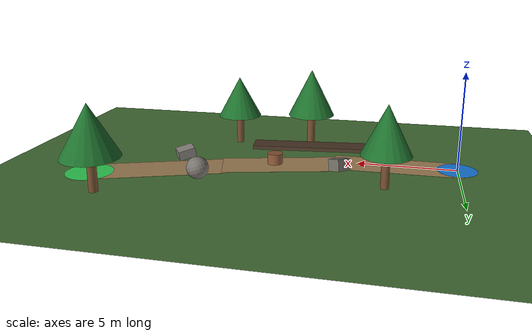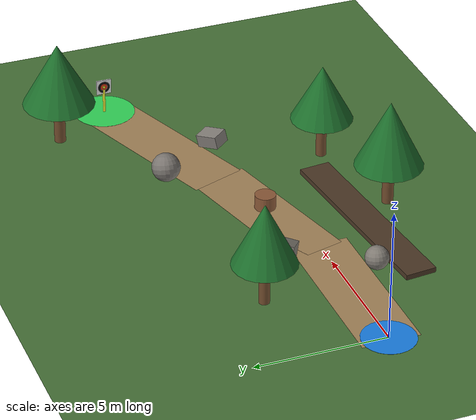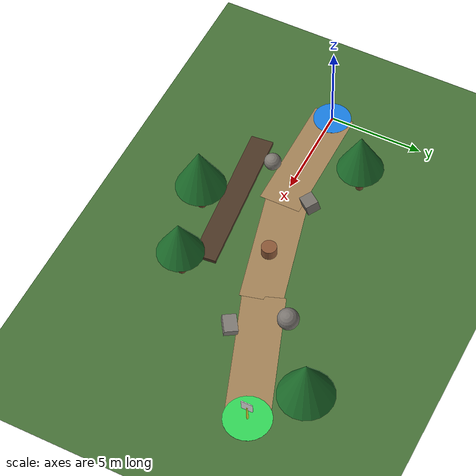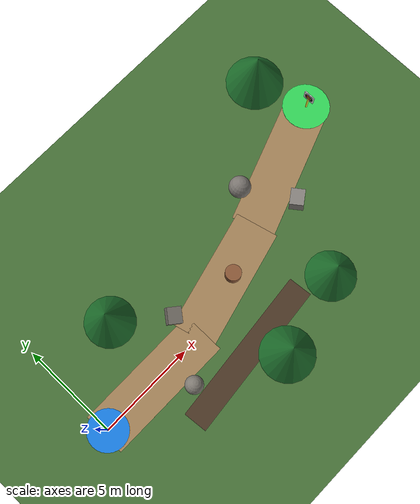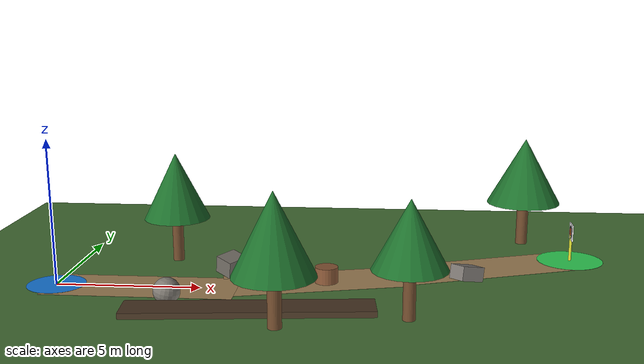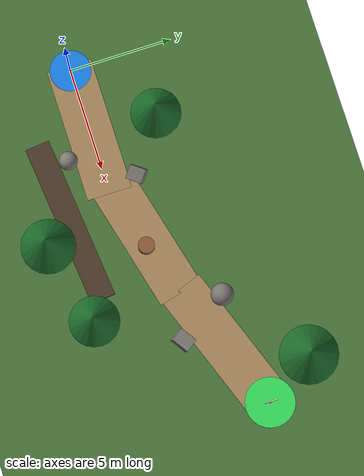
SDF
<?xml version="1.0" ?>
<sdf version="1.8">
  <world name="outdoor_terrain_world">
    <!-- Physics -->
    <physics name="1ms" type="ignored">
      <max_step_size>0.004</max_step_size>
      <real_time_factor>1.0</real_time_factor>
    </physics>

    <!-- Plugins -->
    <plugin filename="gz-sim-physics-system" name="gz::sim::systems::Physics" />
    <plugin filename="gz-sim-user-commands-system" name="gz::sim::systems::UserCommands" />
    <plugin filename="gz-sim-scene-broadcaster-system" name="gz::sim::systems::SceneBroadcaster" />
    <plugin filename="gz-sim-sensors-system" name="gz::sim::systems::Sensors" />
    <plugin filename="gz-sim-imu-system" name="gz::sim::systems::Imu" />

    <!-- Lighting -->
    <light type="directional" name="sun">
      <cast_shadows>true</cast_shadows>
      <pose>0 0 30 0.6 0.4 0.2</pose>
      <diffuse>0.9 0.88 0.82 1</diffuse>
      <specular>0.4 0.4 0.4 1</specular>
      <attenuation>
        <range>1000</range>
        <constant>0.9</constant>
        <linear>0.01</linear>
        <quadratic>0.001</quadratic>
      </attenuation>
      <direction>-0.4 0.2 -1.0</direction>
    </light>

    <scene>
      <ambient>0.6 0.65 0.7 1.0</ambient>
      <background>0.5 0.7 0.9 1.0</background>
      <shadows>true</shadows>
      <grid>false</grid>
    </scene>

    <!-- Base Outdoor Terrain (Grass / Off-road ground) -->
    <model name="outdoor_ground">
      <static>true</static>
      <link name="ground_link">
        <collision name="ground_col">
          <geometry>
            <plane>
              <normal>0 0 1</normal>
              <size>60 60</size>
            </plane>
          </geometry>
          <surface>
            <friction>
              <ode>
                <mu>1.1</mu>
                <mu2>1.1</mu2>
              </ode>
            </friction>
          </surface>
        </collision>
        <visual name="ground_vis">
          <geometry>
            <plane>
              <normal>0 0 1</normal>
              <size>60 60</size>
            </plane>
          </geometry>
          <material>
            <ambient>0.22 0.38 0.18 1.0</ambient>
            <diffuse>0.28 0.45 0.22 1.0</diffuse>
            <specular>0.05 0.05 0.05 1.0</specular>
          </material>
        </visual>
      </link>
    </model>

    <!-- Traversable Dirt Path Segments (Connecting Point A to Point B) -->
    <!-- Segment 1: Start section (0 to 6m) -->
    <model name="path_segment_1">
      <static>true</static>
      <pose>3.0 0.0 0.002 0 0 0</pose>
      <link name="link">
        <visual name="vis">
          <geometry>
            <box>
              <size>6.5 2.2 0.004</size>
            </box>
          </geometry>
          <material>
            <ambient>0.55 0.42 0.28 1.0</ambient>
            <diffuse>0.65 0.52 0.35 1.0</diffuse>
          </material>
        </visual>
      </link>
    </model>

    <!-- Segment 2: Curved transition section (6 to 12m, angled toward y=2) -->
    <model name="path_segment_2">
      <static>true</static>
      <pose>8.8 1.0 0.002 0 0 0.25</pose>
      <link name="link">
        <visual name="vis">
          <geometry>
            <box>
              <size>6.2 2.2 0.004</size>
            </box>
          </geometry>
          <material>
            <ambient>0.55 0.42 0.28 1.0</ambient>
            <diffuse>0.65 0.52 0.35 1.0</diffuse>
          </material>
        </visual>
      </link>
    </model>

    <!-- Segment 3: Goal approach section (12 to 18m, ending at Point B) -->
    <model name="path_segment_3">
      <static>true</static>
      <pose>14.8 3.0 0.002 0 0 0.35</pose>
      <link name="link">
        <visual name="vis">
          <geometry>
            <box>
              <size>6.8 2.2 0.004</size>
            </box>
          </geometry>
          <material>
            <ambient>0.55 0.42 0.28 1.0</ambient>
            <diffuse>0.65 0.52 0.35 1.0</diffuse>
          </material>
        </visual>
      </link>
    </model>

    <!-- Start Pad (Point A at x=0, y=0) -->
    <model name="start_pad_point_a">
      <static>true</static>
      <pose>0.0 0.0 0.005 0 0 0</pose>
      <link name="link">
        <visual name="vis">
          <geometry>
            <cylinder>
              <radius>1.0</radius>
              <length>0.008</length>
            </cylinder>
          </geometry>
          <material>
            <ambient>0.1 0.4 0.8 1.0</ambient>
            <diffuse>0.1 0.5 0.9 1.0</diffuse>
          </material>
        </visual>
      </link>
    </model>

    <!-- Target Beacon & Goal Pad (Point B at x=18.0, y=4.2) -->
    <model name="goal_pad_point_b">
      <static>true</static>
      <pose>18.0 4.2 0.005 0 0 0</pose>
      <link name="link">
        <visual name="vis">
          <geometry>
            <cylinder>
              <radius>1.2</radius>
              <length>0.008</length>
            </cylinder>
          </geometry>
          <material>
            <ambient>0.1 0.7 0.3 1.0</ambient>
            <diffuse>0.2 0.85 0.35 1.0</diffuse>
          </material>
        </visual>
      </link>
    </model>

    <!-- Visual Target Beacon Stand with AprilTag / Fiducial Marker -->
    <model name="visual_beacon_target">
      <static>true</static>
      <pose>18.0 4.2 0.75 0 0 3.14159</pose> <!-- facing toward the oncoming robot -->
      <link name="link">
        <!-- Beacon Pole -->
        <visual name="pole">
          <pose>0 0 -0.25 0 0 0</pose>
          <geometry>
            <cylinder>
              <radius>0.05</radius>
              <length>1.0</length>
            </cylinder>
          </geometry>
          <material>
            <ambient>0.8 0.8 0.1 1.0</ambient>
            <diffuse>0.9 0.9 0.2 1.0</diffuse>
          </material>
        </visual>
        <!-- Beacon Target Sign -->
        <visual name="target_board">
          <pose>0 0 0.35 0 0 0</pose>
          <geometry>
            <box>
              <size>0.04 0.6 0.6</size>
            </box>
          </geometry>
          <material>
            <ambient>0.95 0.95 0.95 1.0</ambient>
            <diffuse>1.0 1.0 1.0 1.0</diffuse>
          </material>
        </visual>
        <!-- High Contrast Visual Bullseye / Fiducial Marker -->
        <visual name="fiducial_outer">
          <pose>0.025 0 0.35 0 1.570796 0</pose>
          <geometry>
            <cylinder>
              <radius>0.24</radius>
              <length>0.01</length>
            </cylinder>
          </geometry>
          <material>
            <ambient>0.1 0.1 0.1 1.0</ambient>
            <diffuse>0.05 0.05 0.05 1.0</diffuse>
          </material>
        </visual>
        <visual name="fiducial_inner">
          <pose>0.03 0 0.35 0 1.570796 0</pose>
          <geometry>
            <cylinder>
              <radius>0.14</radius>
              <length>0.01</length>
            </cylinder>
          </geometry>
          <material>
            <ambient>0.9 0.2 0.1 1.0</ambient>
            <diffuse>0.95 0.25 0.1 1.0</diffuse>
          </material>
        </visual>
        <visual name="fiducial_center">
          <pose>0.035 0 0.35 0 1.570796 0</pose>
          <geometry>
            <cylinder>
              <radius>0.06</radius>
              <length>0.01</length>
            </cylinder>
          </geometry>
          <material>
            <ambient>0.9 0.9 0.1 1.0</ambient>
            <diffuse>0.95 0.95 0.2 1.0</diffuse>
          </material>
        </visual>
        <collision name="col">
          <geometry>
            <cylinder>
              <radius>0.2</radius>
              <length>1.5</length>
            </cylinder>
          </geometry>
        </collision>
      </link>
    </model>

    <!-- ==================== Outdoor Obstacles & Hazards ==================== -->

    <!-- Boulders / Rocks along path boundaries and terrain -->
    <model name="boulder_1">
      <static>true</static>
      <pose>4.2 -1.4 0.35 0.1 0.2 0.4</pose>
      <link name="link">
        <visual name="vis">
          <geometry>
            <sphere>
              <radius>0.45</radius>
            </sphere>
          </geometry>
          <material>
            <ambient>0.4 0.38 0.36 1.0</ambient>
            <diffuse>0.5 0.48 0.45 1.0</diffuse>
          </material>
        </visual>
        <collision name="col">
          <geometry>
            <sphere>
              <radius>0.45</radius>
            </sphere>
          </geometry>
        </collision>
      </link>
    </model>

    <model name="boulder_2">
      <static>true</static>
      <pose>5.8 1.5 0.4 0.2 -0.1 0.9</pose>
      <link name="link">
        <visual name="vis">
          <geometry>
            <box>
              <size>0.8 0.7 0.6</size>
            </box>
          </geometry>
          <material>
            <ambient>0.35 0.33 0.32 1.0</ambient>
            <diffuse>0.45 0.43 0.4 1.0</diffuse>
          </material>
        </visual>
        <collision name="col">
          <geometry>
            <box>
              <size>0.8 0.7 0.6</size>
            </box>
          </geometry>
        </collision>
      </link>
    </model>

    <!-- Obstacle in path requiring Dynamic Collision Avoidance around x=9.5 -->
    <model name="path_hazard_rock">
      <static>true</static>
      <pose>9.2 0.9 0.3 0 0 0.5</pose>
      <link name="link">
        <visual name="vis">
          <geometry>
            <cylinder>
              <radius>0.40</radius>
              <length>0.55</length>
            </cylinder>
          </geometry>
          <material>
            <ambient>0.45 0.25 0.15 1.0</ambient>
            <diffuse>0.55 0.35 0.22 1.0</diffuse>
          </material>
        </visual>
        <collision name="col">
          <geometry>
            <cylinder>
              <radius>0.40</radius>
              <length>0.55</length>
            </cylinder>
          </geometry>
        </collision>
      </link>
    </model>

    <model name="boulder_3">
      <static>true</static>
      <pose>12.5 3.6 0.45 0.3 0.1 1.2</pose>
      <link name="link">
        <visual name="vis">
          <geometry>
            <sphere>
              <radius>0.55</radius>
            </sphere>
          </geometry>
          <material>
            <ambient>0.38 0.36 0.35 1.0</ambient>
            <diffuse>0.48 0.46 0.44 1.0</diffuse>
          </material>
        </visual>
        <collision name="col">
          <geometry>
            <sphere>
              <radius>0.55</radius>
            </sphere>
          </geometry>
        </collision>
      </link>
    </model>

    <model name="boulder_4">
      <static>true</static>
      <pose>14.0 1.2 0.38 -0.1 0.2 0.6</pose>
      <link name="link">
        <visual name="vis">
          <geometry>
            <box>
              <size>0.9 0.7 0.5</size>
            </box>
          </geometry>
          <material>
            <ambient>0.42 0.4 0.38 1.0</ambient>
            <diffuse>0.52 0.5 0.48 1.0</diffuse>
          </material>
        </visual>
        <collision name="col">
          <geometry>
            <box>
              <size>0.9 0.7 0.5</size>
            </box>
          </geometry>
        </collision>
      </link>
    </model>

    <!-- Hazard Ditch / Boundary Trench on the right side -->
    <model name="trench_hazard_1">
      <static>true</static>
      <pose>7.0 -2.2 0.1 0 0 0.1</pose>
      <link name="link">
        <visual name="vis">
          <geometry>
            <box>
              <size>8.0 1.2 0.2</size>
            </box>
          </geometry>
          <material>
            <ambient>0.2 0.15 0.1 1.0</ambient>
            <diffuse>0.3 0.22 0.15 1.0</diffuse>
          </material>
        </visual>
        <collision name="col">
          <geometry>
            <box>
              <size>8.0 1.2 0.2</size>
            </box>
          </geometry>
        </collision>
      </link>
    </model>

    <!-- Forest Trees surrounding the outdoor terrain -->
    <!-- Tree 1 -->
    <model name="tree_1">
      <static>true</static>
      <pose>3.5 3.2 0 0 0 0</pose>
      <link name="link">
        <!-- Trunk -->
        <visual name="trunk">
          <pose>0 0 1.0 0 0 0</pose>
          <geometry>
            <cylinder>
              <radius>0.2</radius>
              <length>2.0</length>
            </cylinder>
          </geometry>
          <material>
            <ambient>0.35 0.22 0.12 1.0</ambient>
            <diffuse>0.45 0.3 0.18 1.0</diffuse>
          </material>
        </visual>
        <!-- Foliage Cone -->
        <visual name="foliage">
          <pose>0 0 2.8 0 0 0</pose>
          <geometry>
            <cone>
              <radius>1.2</radius>
              <length>2.4</length>
            </cone>
          </geometry>
          <material>
            <ambient>0.08 0.35 0.12 1.0</ambient>
            <diffuse>0.12 0.45 0.18 1.0</diffuse>
          </material>
        </visual>
        <collision name="col">
          <pose>0 0 1.0 0 0 0</pose>
          <geometry>
            <cylinder>
              <radius>0.25</radius>
              <length>2.0</length>
            </cylinder>
          </geometry>
        </collision>
      </link>
    </model>

    <!-- Tree 2 -->
    <model name="tree_2">
      <static>true</static>
      <pose>8.0 -3.5 0 0 0 0</pose>
      <link name="link">
        <visual name="trunk">
          <pose>0 0 1.0 0 0 0</pose>
          <geometry>
            <cylinder>
              <radius>0.22</radius>
              <length>2.0</length>
            </cylinder>
          </geometry>
          <material>
            <ambient>0.35 0.22 0.12 1.0</ambient>
            <diffuse>0.45 0.3 0.18 1.0</diffuse>
          </material>
        </visual>
        <visual name="foliage">
          <pose>0 0 2.9 0 0 0</pose>
          <geometry>
            <cone>
              <radius>1.3</radius>
              <length>2.6</length>
            </cone>
          </geometry>
          <material>
            <ambient>0.08 0.35 0.12 1.0</ambient>
            <diffuse>0.12 0.45 0.18 1.0</diffuse>
          </material>
        </visual>
        <collision name="col">
          <pose>0 0 1.0 0 0 0</pose>
          <geometry>
            <cylinder>
              <radius>0.25</radius>
              <length>2.0</length>
            </cylinder>
          </geometry>
        </collision>
      </link>
    </model>

    <!-- Tree 3 -->
    <model name="tree_3">
      <static>true</static>
      <pose>12.0 -2.5 0 0 0 0</pose>
      <link name="link">
        <visual name="trunk">
          <pose>0 0 1.0 0 0 0</pose>
          <geometry>
            <cylinder>
              <radius>0.2</radius>
              <length>2.0</length>
            </cylinder>
          </geometry>
          <material>
            <ambient>0.35 0.22 0.12 1.0</ambient>
            <diffuse>0.45 0.3 0.18 1.0</diffuse>
          </material>
        </visual>
        <visual name="foliage">
          <pose>0 0 2.7 0 0 0</pose>
          <geometry>
            <cone>
              <radius>1.2</radius>
              <length>2.2</length>
            </cone>
          </geometry>
          <material>
            <ambient>0.08 0.35 0.12 1.0</ambient>
            <diffuse>0.12 0.45 0.18 1.0</diffuse>
          </material>
        </visual>
        <collision name="col">
          <pose>0 0 1.0 0 0 0</pose>
          <geometry>
            <cylinder>
              <radius>0.25</radius>
              <length>2.0</length>
            </cylinder>
          </geometry>
        </collision>
      </link>
    </model>

    <!-- Tree 4 -->
    <model name="tree_4">
      <static>true</static>
      <pose>16.5 6.5 0 0 0 0</pose>
      <link name="link">
        <visual name="trunk">
          <pose>0 0 1.0 0 0 0</pose>
          <geometry>
            <cylinder>
              <radius>0.22</radius>
              <length>2.0</length>
            </cylinder>
          </geometry>
          <material>
            <ambient>0.35 0.22 0.12 1.0</ambient>
            <diffuse>0.45 0.3 0.18 1.0</diffuse>
          </material>
        </visual>
        <visual name="foliage">
          <pose>0 0 2.9 0 0 0</pose>
          <geometry>
            <cone>
              <radius>1.4</radius>
              <length>2.5</length>
            </cone>
          </geometry>
          <material>
            <ambient>0.08 0.35 0.12 1.0</ambient>
            <diffuse>0.12 0.45 0.18 1.0</diffuse>
          </material>
        </visual>
        <collision name="col">
          <pose>0 0 1.0 0 0 0</pose>
          <geometry>
            <cylinder>
              <radius>0.25</radius>
              <length>2.0</length>
            </cylinder>
          </geometry>
        </collision>
      </link>
    </model>

  </world>
</sdf>
